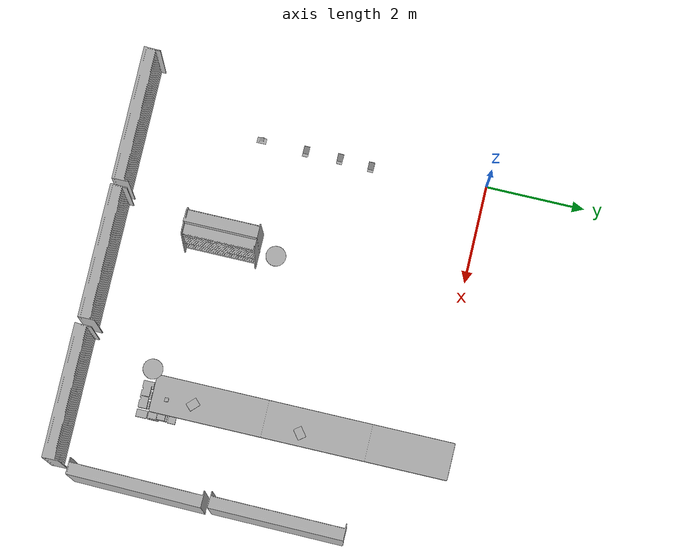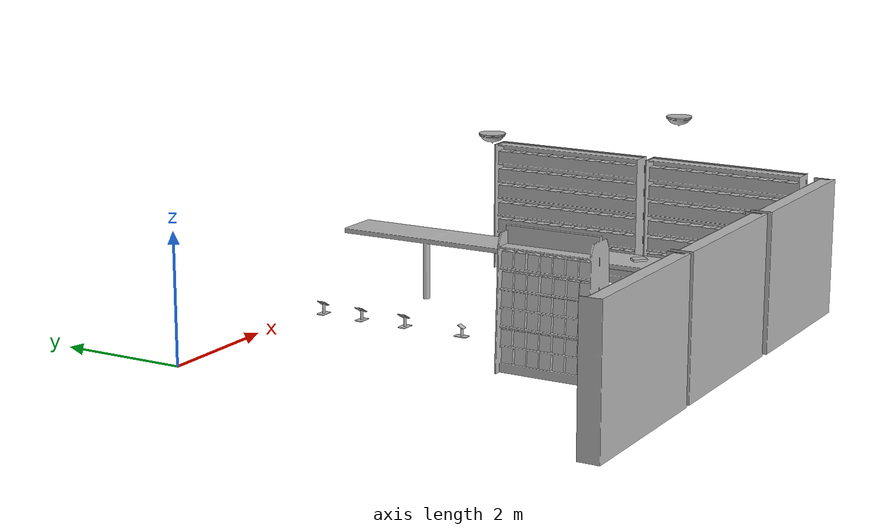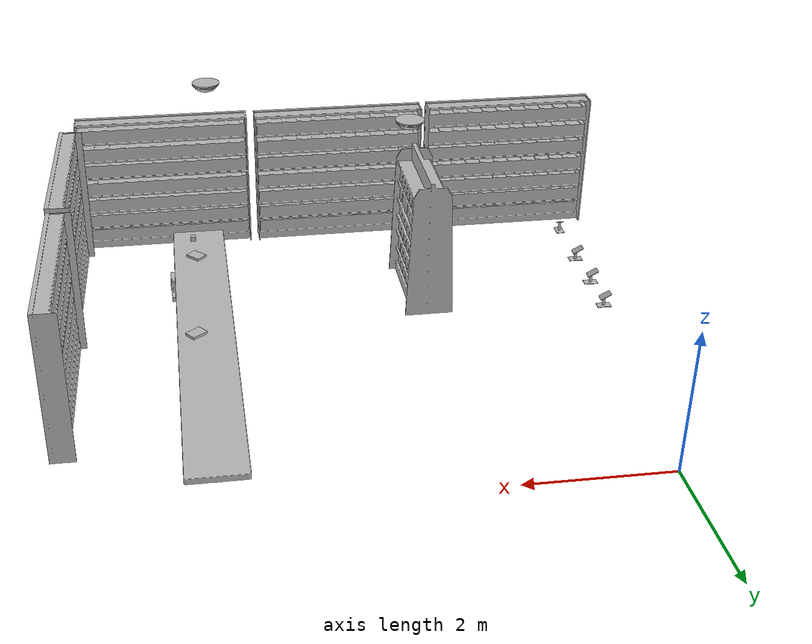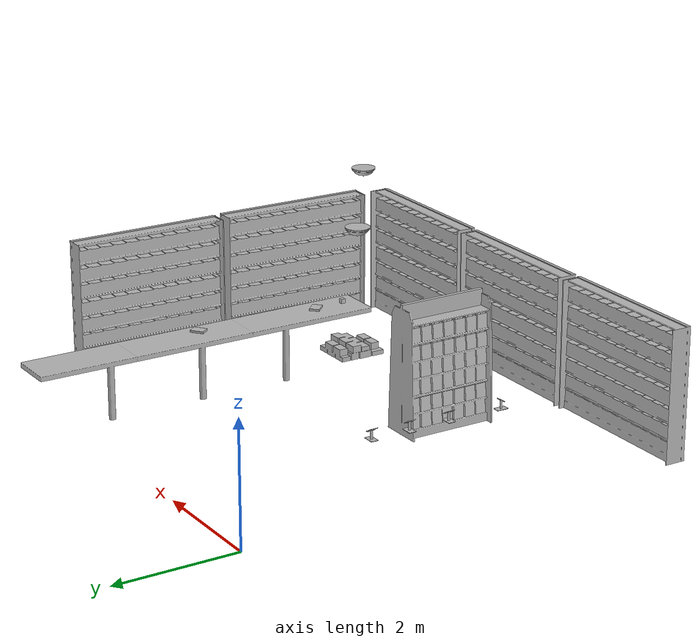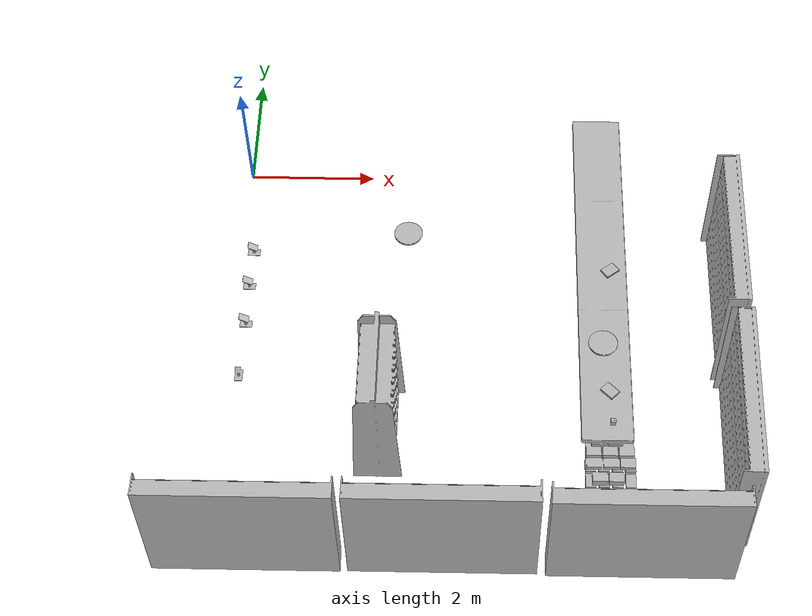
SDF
<sdf version="1.7">
 <world name="default">
  <model name="BookE_01_004">
   <frame name="aws_robomaker_retail_BookE_01::__model__" attached_to="aws_robomaker_retail_BookE_01::link">
    <pose relative_to="__model__">0 0 0 0 -0 0</pose>
   </frame>
   <link name="aws_robomaker_retail_BookE_01::link">
    <inertial>
     <mass>1</mass>
     <inertia><ixy>0</ixy><ixz>0</ixz><iyz>0</iyz><ixx>0.0666</ixx><iyy>0.0346</iyy><izz>0.0986</izz></inertia>
    </inertial>
    <collision name="collision">
     <geometry>
      <mesh>
       <uri>model://aws_robomaker_retail_BookE_01/meshes/aws_BookE_01_collision.DAE</uri>
       <scale>1 1 1</scale>
      </mesh>
     </geometry>
    </collision>
    <visual name="visual">
     <geometry>
      <mesh><uri>model://aws_robomaker_retail_BookE_01/meshes/aws_BookE_01_visual.DAE</uri></mesh>
     </geometry>
    </visual>
    <pose relative_to="aws_robomaker_retail_BookE_01::__model__">0 0 0 0 -0 0</pose>
   </link>
   <static>1</static>
   <pose>5.67723 -4.6492 0.946394 0.0001 6e-06 -2.35575</pose>
  </model>
  <model name="BookE_01_011">
   <frame name="aws_robomaker_retail_BookE_01::__model__" attached_to="aws_robomaker_retail_BookE_01::link">
    <pose relative_to="__model__">0 0 0 0 -0 0</pose>
   </frame>
   <link name="aws_robomaker_retail_BookE_01::link">
    <inertial>
     <mass>1</mass>
     <inertia><ixy>0</ixy><ixz>0</ixz><iyz>0</iyz><ixx>0.0666</ixx><iyy>0.0346</iyy><izz>0.0986</izz></inertia>
    </inertial>
    <collision name="collision">
     <geometry>
      <mesh>
       <uri>model://aws_robomaker_retail_BookE_01/meshes/aws_BookE_01_collision.DAE</uri>
       <scale>1 1 1</scale>
      </mesh>
     </geometry>
    </collision>
    <visual name="visual">
     <geometry>
      <mesh><uri>model://aws_robomaker_retail_BookE_01/meshes/aws_BookE_01_visual.DAE</uri></mesh>
     </geometry>
    </visual>
    <pose relative_to="aws_robomaker_retail_BookE_01::__model__">0 0 0 0 -0 0</pose>
   </link>
   <static>1</static>
   <pose>5.74923 -2.49202 0.948933 2e-06 1e-06 2.22339</pose>
  </model>
  <model name="BookD_01_001">
   <frame name="aws_robomaker_retail_BookD_01::__model__" attached_to="aws_robomaker_retail_BookD_01::link">
    <pose relative_to="__model__">0 0 0 0 -0 0</pose>
   </frame>
   <link name="aws_robomaker_retail_BookD_01::link">
    <inertial><mass>0.5</mass></inertial>
    <collision name="collision">
     <geometry>
      <mesh>
       <uri>model://aws_robomaker_retail_BookD_01/meshes/aws_BookD_01_collision.DAE</uri>
       <scale>1 1 1</scale>
      </mesh>
     </geometry>
    </collision>
    <visual name="visual">
     <geometry>
      <mesh><uri>model://aws_robomaker_retail_BookD_01/meshes/aws_BookD_01_visual.DAE</uri></mesh>
     </geometry>
    </visual>
    <pose relative_to="aws_robomaker_retail_BookD_01::__model__">0 0 0 0 -0 0</pose>
   </link>
   <static>1</static>
   <pose>5.72005 -5.36588 0.022179 0.003452 -1e-06 0.000652</pose>
  </model>
  <model name="BookshelfA_01_002">
   <frame name="aws_robomaker_retail_BookshelfA_01::__model__" attached_to="aws_robomaker_retail_BookshelfA_01::link">
    <pose relative_to="__model__">0 0 0 0 -0 0</pose>
   </frame>
   <link name="aws_robomaker_retail_BookshelfA_01::link">
    <inertial>
     <mass>50</mass>
     <inertia><ixx>27.7341</ixx><ixy>0</ixy><ixz>0</ixz><iyy>20.9361</iyy><iyz>0</iyz><izz>11.3596</izz></inertia>
    </inertial>
    <collision name="collision">
     <geometry>
      <mesh>
       <uri>model://aws_robomaker_retail_BookshelfA_01/meshes/aws_BookshelfA_01_collision.DAE</uri>
       <scale>1 1 1</scale>
      </mesh>
     </geometry>
    </collision>
    <visual name="visual">
     <geometry>
      <mesh><uri>model://aws_robomaker_retail_BookshelfA_01/meshes/aws_BookshelfA_01_visual.DAE</uri></mesh>
     </geometry>
    </visual>
    <pose relative_to="aws_robomaker_retail_BookshelfA_01::__model__">0 0 0 0 -0 0</pose>
   </link>
   <static>1</static>
   <pose>2.31921 -4.85951 0.003411 0 -0 0</pose>
  </model>
  <model name="BookshelfB_01_003">
   <frame name="aws_robomaker_retail_BookshelfB_01::__model__" attached_to="aws_robomaker_retail_BookshelfB_01::link">
    <pose relative_to="__model__">0 0 0 0 -0 0</pose>
   </frame>
   <link name="aws_robomaker_retail_BookshelfB_01::link">
    <inertial>
     <mass>50</mass>
     <inertia><ixx>19.8742</ixx><ixy>0</ixy><ixz>0</ixz><iyy>49.1263</iyy><iyz>0</iyz><izz>30.2231</izz></inertia>
    </inertial>
    <collision name="collision">
     <geometry>
      <mesh>
       <uri>model://aws_robomaker_retail_BookshelfB_01/meshes/aws_BookshelfB_01_collision.DAE</uri>
       <scale>1 1 1</scale>
      </mesh>
     </geometry>
    </collision>
    <visual name="visual">
     <geometry>
      <mesh><uri>model://aws_robomaker_retail_BookshelfB_01/meshes/aws_BookshelfB_01_visual.DAE</uri></mesh>
     </geometry>
    </visual>
    <pose relative_to="aws_robomaker_retail_BookshelfB_01::__model__">0 0 0 0 -0 0</pose>
   </link>
   <static>1</static>
   <pose>0.522246 -6.9715 0.017947 -0.003292 0 0</pose>
  </model>
  <model name="BookshelfB_01_004">
   <frame name="aws_robomaker_retail_BookshelfB_01::__model__" attached_to="aws_robomaker_retail_BookshelfB_01::link">
    <pose relative_to="__model__">0 0 0 0 -0 0</pose>
   </frame>
   <link name="aws_robomaker_retail_BookshelfB_01::link">
    <inertial>
     <mass>50</mass>
     <inertia><ixx>19.8742</ixx><ixy>0</ixy><ixz>0</ixz><iyy>49.1263</iyy><iyz>0</iyz><izz>30.2231</izz></inertia>
    </inertial>
    <collision name="collision">
     <geometry>
      <mesh>
       <uri>model://aws_robomaker_retail_BookshelfB_01/meshes/aws_BookshelfB_01_collision.DAE</uri>
       <scale>1 1 1</scale>
      </mesh>
     </geometry>
    </collision>
    <visual name="visual">
     <geometry>
      <mesh><uri>model://aws_robomaker_retail_BookshelfB_01/meshes/aws_BookshelfB_01_visual.DAE</uri></mesh>
     </geometry>
    </visual>
    <pose relative_to="aws_robomaker_retail_BookshelfB_01::__model__">0 0 0 0 -0 0</pose>
   </link>
   <static>1</static>
   <pose>3.29339 -6.96366 0.017383 8e-06 -2e-06 -0</pose>
  </model>
  <model name="BookshelfB_01_005">
   <frame name="aws_robomaker_retail_BookshelfB_01::__model__" attached_to="aws_robomaker_retail_BookshelfB_01::link">
    <pose relative_to="__model__">0 0 0 0 -0 0</pose>
   </frame>
   <link name="aws_robomaker_retail_BookshelfB_01::link">
    <inertial>
     <mass>50</mass>
     <inertia><ixx>19.8742</ixx><ixy>0</ixy><ixz>0</ixz><iyy>49.1263</iyy><iyz>0</iyz><izz>30.2231</izz></inertia>
    </inertial>
    <collision name="collision">
     <geometry>
      <mesh>
       <uri>model://aws_robomaker_retail_BookshelfB_01/meshes/aws_BookshelfB_01_collision.DAE</uri>
       <scale>1 1 1</scale>
      </mesh>
     </geometry>
    </collision>
    <visual name="visual">
     <geometry>
      <mesh><uri>model://aws_robomaker_retail_BookshelfB_01/meshes/aws_BookshelfB_01_visual.DAE</uri></mesh>
     </geometry>
    </visual>
    <pose relative_to="aws_robomaker_retail_BookshelfB_01::__model__">0 0 0 0 -0 0</pose>
   </link>
   <static>1</static>
   <pose>6.08038 -6.98766 0.017409 0.000174 4e-06 0</pose>
  </model>
  <model name="BookshelfB_01_006">
   <frame name="aws_robomaker_retail_BookshelfB_01::__model__" attached_to="aws_robomaker_retail_BookshelfB_01::link">
    <pose relative_to="__model__">0 0 0 0 -0 0</pose>
   </frame>
   <link name="aws_robomaker_retail_BookshelfB_01::link">
    <inertial>
     <mass>50</mass>
     <inertia><ixx>19.8742</ixx><ixy>0</ixy><ixz>0</ixz><iyy>49.1263</iyy><iyz>0</iyz><izz>30.2231</izz></inertia>
    </inertial>
    <collision name="collision">
     <geometry>
      <mesh>
       <uri>model://aws_robomaker_retail_BookshelfB_01/meshes/aws_BookshelfB_01_collision.DAE</uri>
       <scale>1 1 1</scale>
      </mesh>
     </geometry>
    </collision>
    <visual name="visual">
     <geometry>
      <mesh><uri>model://aws_robomaker_retail_BookshelfB_01/meshes/aws_BookshelfB_01_visual.DAE</uri></mesh>
     </geometry>
    </visual>
    <pose relative_to="aws_robomaker_retail_BookshelfB_01::__model__">0 0 0 0 -0 0</pose>
   </link>
   <static>1</static>
   <pose>7.47833 -5.2983 0.017443 -0.001974 -0.000211 1.55406</pose>
  </model>
  <model name="BookshelfB_01_007">
   <frame name="aws_robomaker_retail_BookshelfB_01::__model__" attached_to="aws_robomaker_retail_BookshelfB_01::link">
    <pose relative_to="__model__">0 0 0 0 -0 0</pose>
   </frame>
   <link name="aws_robomaker_retail_BookshelfB_01::link">
    <inertial>
     <mass>50</mass>
     <inertia><ixx>19.8742</ixx><ixy>0</ixy><ixz>0</ixz><iyy>49.1263</iyy><iyz>0</iyz><izz>30.2231</izz></inertia>
    </inertial>
    <collision name="collision">
     <geometry>
      <mesh>
       <uri>model://aws_robomaker_retail_BookshelfB_01/meshes/aws_BookshelfB_01_collision.DAE</uri>
       <scale>1 1 1</scale>
      </mesh>
     </geometry>
    </collision>
    <visual name="visual">
     <geometry>
      <mesh><uri>model://aws_robomaker_retail_BookshelfB_01/meshes/aws_BookshelfB_01_visual.DAE</uri></mesh>
     </geometry>
    </visual>
    <pose relative_to="aws_robomaker_retail_BookshelfB_01::__model__">0 0 0 0 -0 0</pose>
   </link>
   <static>1</static>
   <pose>7.47833 -2.51065 0.017402 1e-05 -1.3e-05 1.56207</pose>
  </model>
  <model name="DeskB_01_001">
   <frame name="aws_robomaker_retail_DeskB_01::__model__" attached_to="aws_robomaker_retail_DeskB_01::link">
    <pose relative_to="__model__">0 0 0 0 -0 0</pose>
   </frame>
   <link name="aws_robomaker_retail_DeskB_01::link">
    <inertial>
     <mass>50</mass>
     <inertia><ixx>154.884</ixx><ixy>0</ixy><ixz>0</ixz><iyy>7.48424</iyy><iyz>0</iyz><izz>152.099</izz></inertia>
    </inertial>
    <collision name="collision">
     <geometry>
      <mesh>
       <uri>model://aws_robomaker_retail_DeskB_01/meshes/aws_DeskB_01_collision.DAE</uri>
       <scale>1 1 1</scale>
      </mesh>
     </geometry>
    </collision>
    <visual name="visual">
     <geometry>
      <mesh><uri>model://aws_robomaker_retail_DeskB_01/meshes/aws_DeskB_01_visual.DAE</uri></mesh>
     </geometry>
    </visual>
    <pose relative_to="aws_robomaker_retail_DeskB_01::__model__">0 0 0 0 -0 0</pose>
   </link>
   <static>1</static>
   <pose>5.62294 -2.47542 -0.181282 0 -0 0</pose>
  </model>
  <model name="TabletB_01_005">
   <frame name="aws_robomaker_retail_TabletB_01::__model__" attached_to="aws_robomaker_retail_TabletB_01::link">
    <pose relative_to="__model__">0 0 0 0 -0 0</pose>
   </frame>
   <link name="aws_robomaker_retail_TabletB_01::link">
    <inertial>
     <mass>0.161</mass>
     <inertia>
      <ixx>0.346954</ixx>
      <ixy>0</ixy>
      <ixz>0</ixz>
      <iyy>0.177288</iyy>
      <iyz>0</iyz>
      <izz>0.521826</izz>
     </inertia>
    </inertial>
    <collision name="collision">
     <geometry>
      <mesh>
       <uri>model://aws_robomaker_retail_TabletB_01/meshes/aws_TabletB_01_collision.DAE</uri>
       <scale>1 1 1</scale>
      </mesh>
     </geometry>
    </collision>
    <visual name="visual">
     <geometry>
      <mesh><uri>model://aws_robomaker_retail_TabletB_01/meshes/aws_TabletB_01_visual.DAE</uri></mesh>
     </geometry>
    </visual>
    <pose relative_to="aws_robomaker_retail_TabletB_01::__model__">0 0 0 0 -0 0</pose>
   </link>
   <static>1</static>
   <pose>0.293446 -3.63352 1.18472 0.518383 0.023342 1.56451</pose>
  </model>
  <model name="TabletB_01_006">
   <frame name="aws_robomaker_retail_TabletB_01::__model__" attached_to="aws_robomaker_retail_TabletB_01::link">
    <pose relative_to="__model__">0 0 0 0 -0 0</pose>
   </frame>
   <link name="aws_robomaker_retail_TabletB_01::link">
    <inertial>
     <mass>0.161</mass>
     <inertia>
      <ixx>0.346954</ixx>
      <ixy>0</ixy>
      <ixz>0</ixz>
      <iyy>0.177288</iyy>
      <iyz>0</iyz>
      <izz>0.521826</izz>
     </inertia>
    </inertial>
    <collision name="collision">
     <geometry>
      <mesh>
       <uri>model://aws_robomaker_retail_TabletB_01/meshes/aws_TabletB_01_collision.DAE</uri>
       <scale>1 1 1</scale>
      </mesh>
     </geometry>
    </collision>
    <visual name="visual">
     <geometry>
      <mesh><uri>model://aws_robomaker_retail_TabletB_01/meshes/aws_TabletB_01_visual.DAE</uri></mesh>
     </geometry>
    </visual>
    <pose relative_to="aws_robomaker_retail_TabletB_01::__model__">0 0 0 0 -0 0</pose>
   </link>
   <static>1</static>
   <pose>0.289762 -2.94902 1.18472 0.518383 0.023342 1.56451</pose>
  </model>
  <model name="TabletB_01_007">
   <frame name="aws_robomaker_retail_TabletB_01::__model__" attached_to="aws_robomaker_retail_TabletB_01::link">
    <pose relative_to="__model__">0 0 0 0 -0 0</pose>
   </frame>
   <link name="aws_robomaker_retail_TabletB_01::link">
    <inertial>
     <mass>0.161</mass>
     <inertia>
      <ixx>0.346954</ixx>
      <ixy>0</ixy>
      <ixz>0</ixz>
      <iyy>0.177288</iyy>
      <iyz>0</iyz>
      <izz>0.521826</izz>
     </inertia>
    </inertial>
    <collision name="collision">
     <geometry>
      <mesh>
       <uri>model://aws_robomaker_retail_TabletB_01/meshes/aws_TabletB_01_collision.DAE</uri>
       <scale>1 1 1</scale>
      </mesh>
     </geometry>
    </collision>
    <visual name="visual">
     <geometry>
      <mesh><uri>model://aws_robomaker_retail_TabletB_01/meshes/aws_TabletB_01_visual.DAE</uri></mesh>
     </geometry>
    </visual>
    <pose relative_to="aws_robomaker_retail_TabletB_01::__model__">0 0 0 0 -0 0</pose>
   </link>
   <static>1</static>
   <pose>0.312299 -2.32051 1.18472 0.518383 0.023342 1.56451</pose>
  </model>
  <model name="Holder_01_003">
   <frame name="aws_robomaker_retail_Holder_01::__model__" attached_to="aws_robomaker_retail_Holder_01::link">
    <pose relative_to="__model__">0 0 0 0 -0 0</pose>
   </frame>
   <link name="aws_robomaker_retail_Holder_01::link">
    <inertial><mass>1</mass></inertial>
    <collision name="collision">
     <geometry>
      <mesh>
       <uri>model://aws_robomaker_retail_Holder_01/meshes/aws_Holder_01_collision.DAE</uri>
       <scale>1 1 1</scale>
      </mesh>
     </geometry>
    </collision>
    <visual name="visual">
     <geometry>
      <mesh><uri>model://aws_robomaker_retail_Holder_01/meshes/aws_Holder_01_visual.DAE</uri></mesh>
     </geometry>
    </visual>
    <pose relative_to="aws_robomaker_retail_Holder_01::__model__">0 0 0 0 -0 0</pose>
   </link>
   <static>1</static>
   <pose>0.287879 -4.54155 1.03776 0 -0 0</pose>
  </model>
  <model name="Holder_01_013">
   <frame name="aws_robomaker_retail_Holder_01::__model__" attached_to="aws_robomaker_retail_Holder_01::link">
    <pose relative_to="__model__">0 0 0 0 -0 0</pose>
   </frame>
   <link name="aws_robomaker_retail_Holder_01::link">
    <inertial><mass>1</mass></inertial>
    <collision name="collision">
     <geometry>
      <mesh>
       <uri>model://aws_robomaker_retail_Holder_01/meshes/aws_Holder_01_collision.DAE</uri>
       <scale>1 1 1</scale>
      </mesh>
     </geometry>
    </collision>
    <visual name="visual">
     <geometry>
      <mesh><uri>model://aws_robomaker_retail_Holder_01/meshes/aws_Holder_01_visual.DAE</uri></mesh>
     </geometry>
    </visual>
    <pose relative_to="aws_robomaker_retail_Holder_01::__model__">0 0 0 0 -0 0</pose>
   </link>
   <static>1</static>
   <pose>0.315098 -3.63983 1.03776 0 -0 1.55</pose>
  </model>
  <model name="Holder_01_014">
   <frame name="aws_robomaker_retail_Holder_01::__model__" attached_to="aws_robomaker_retail_Holder_01::link">
    <pose relative_to="__model__">0 0 0 0 -0 0</pose>
   </frame>
   <link name="aws_robomaker_retail_Holder_01::link">
    <inertial><mass>1</mass></inertial>
    <collision name="collision">
     <geometry>
      <mesh>
       <uri>model://aws_robomaker_retail_Holder_01/meshes/aws_Holder_01_collision.DAE</uri>
       <scale>1 1 1</scale>
      </mesh>
     </geometry>
    </collision>
    <visual name="visual">
     <geometry>
      <mesh><uri>model://aws_robomaker_retail_Holder_01/meshes/aws_Holder_01_visual.DAE</uri></mesh>
     </geometry>
    </visual>
    <pose relative_to="aws_robomaker_retail_Holder_01::__model__">0 0 0 0 -0 0</pose>
   </link>
   <static>1</static>
   <pose>0.306923 -2.9538 1.03776 0 -0 1.55</pose>
  </model>
  <model name="Holder_01_015">
   <frame name="aws_robomaker_retail_Holder_01::__model__" attached_to="aws_robomaker_retail_Holder_01::link">
    <pose relative_to="__model__">0 0 0 0 -0 0</pose>
   </frame>
   <link name="aws_robomaker_retail_Holder_01::link">
    <inertial><mass>1</mass></inertial>
    <collision name="collision">
     <geometry>
      <mesh>
       <uri>model://aws_robomaker_retail_Holder_01/meshes/aws_Holder_01_collision.DAE</uri>
       <scale>1 1 1</scale>
      </mesh>
     </geometry>
    </collision>
    <visual name="visual">
     <geometry>
      <mesh><uri>model://aws_robomaker_retail_Holder_01/meshes/aws_Holder_01_visual.DAE</uri></mesh>
     </geometry>
    </visual>
    <pose relative_to="aws_robomaker_retail_Holder_01::__model__">0 0 0 0 -0 0</pose>
   </link>
   <static>1</static>
   <pose>0.322944 -2.31998 1.03776 0 -0 1.55</pose>
  </model>
  <model name="LightA_01_001">
   <frame name="aws_robomaker_retail_LightA_01::__model__" attached_to="aws_robomaker_retail_LightA_01::link">
    <pose relative_to="__model__">0 0 0 0 -0 0</pose>
   </frame>
   <link name="aws_robomaker_retail_LightA_01::link">
    <inertial><mass>1</mass></inertial>
    <collision name="collision">
     <geometry>
      <mesh>
       <uri>model://aws_robomaker_retail_LightA_01/meshes/aws_LightA_01_collision.DAE</uri>
       <scale>1 1 1</scale>
      </mesh>
     </geometry>
    </collision>
    <visual name="visual">
     <geometry>
      <mesh><uri>model://aws_robomaker_retail_LightA_01/meshes/aws_LightA_01_visual.DAE</uri></mesh>
     </geometry>
    </visual>
    <pose relative_to="aws_robomaker_retail_LightA_01::__model__">0 0 0 0 -0 0</pose>
   </link>
   <static>1</static>
   <pose>2.77442 -3.62815 3.15033 0 -0 0</pose>
  </model>
  <model name="LightA_01_002">
   <frame name="aws_robomaker_retail_LightA_01::__model__" attached_to="aws_robomaker_retail_LightA_01::link">
    <pose relative_to="__model__">0 0 0 0 -0 0</pose>
   </frame>
   <link name="aws_robomaker_retail_LightA_01::link">
    <inertial><mass>1</mass></inertial>
    <collision name="collision">
     <geometry>
      <mesh>
       <uri>model://aws_robomaker_retail_LightA_01/meshes/aws_LightA_01_collision.DAE</uri>
       <scale>1 1 1</scale>
      </mesh>
     </geometry>
    </collision>
    <visual name="visual">
     <geometry>
      <mesh><uri>model://aws_robomaker_retail_LightA_01/meshes/aws_LightA_01_visual.DAE</uri></mesh>
     </geometry>
    </visual>
    <pose relative_to="aws_robomaker_retail_LightA_01::__model__">0 0 0 0 -0 0</pose>
   </link>
   <static>1</static>
   <pose>5.38399 -5.38371 3.15033 0 -0 0</pose>
  </model>
  <model name="MagicCube_01_001">
   <frame name="aws_robomaker_retail_MagicCube_01::__model__" attached_to="aws_robomaker_retail_MagicCube_01::link">
    <pose relative_to="__model__">0 0 0 0 -0 0</pose>
   </frame>
   <link name="aws_robomaker_retail_MagicCube_01::link">
    <inertial>
     <mass>0.2</mass>
     <inertia><ixx>0.01</ixx><ixy>0</ixy><ixz>0</ixz><iyy>0.01</iyy><iyz>0</iyz><izz>0.01</izz></inertia>
    </inertial>
    <collision name="collision">
     <geometry>
      <mesh>
       <uri>model://aws_robomaker_retail_MagicCube_01/meshes/aws_MagicCube_01_collision.DAE</uri>
       <scale>1 1 1</scale>
      </mesh>
     </geometry>
    </collision>
    <visual name="visual">
     <geometry>
      <mesh><uri>model://aws_robomaker_retail_MagicCube_01/meshes/aws_MagicCube_01_visual.DAE</uri></mesh>
     </geometry>
    </visual>
    <pose relative_to="aws_robomaker_retail_MagicCube_01::__model__">0 0 0 0 -0 0</pose>
   </link>
   <pose>5.70452 -5.17433 0.928725 -0 -0 -1.55541</pose>
  </model>
 </world>
</sdf>
